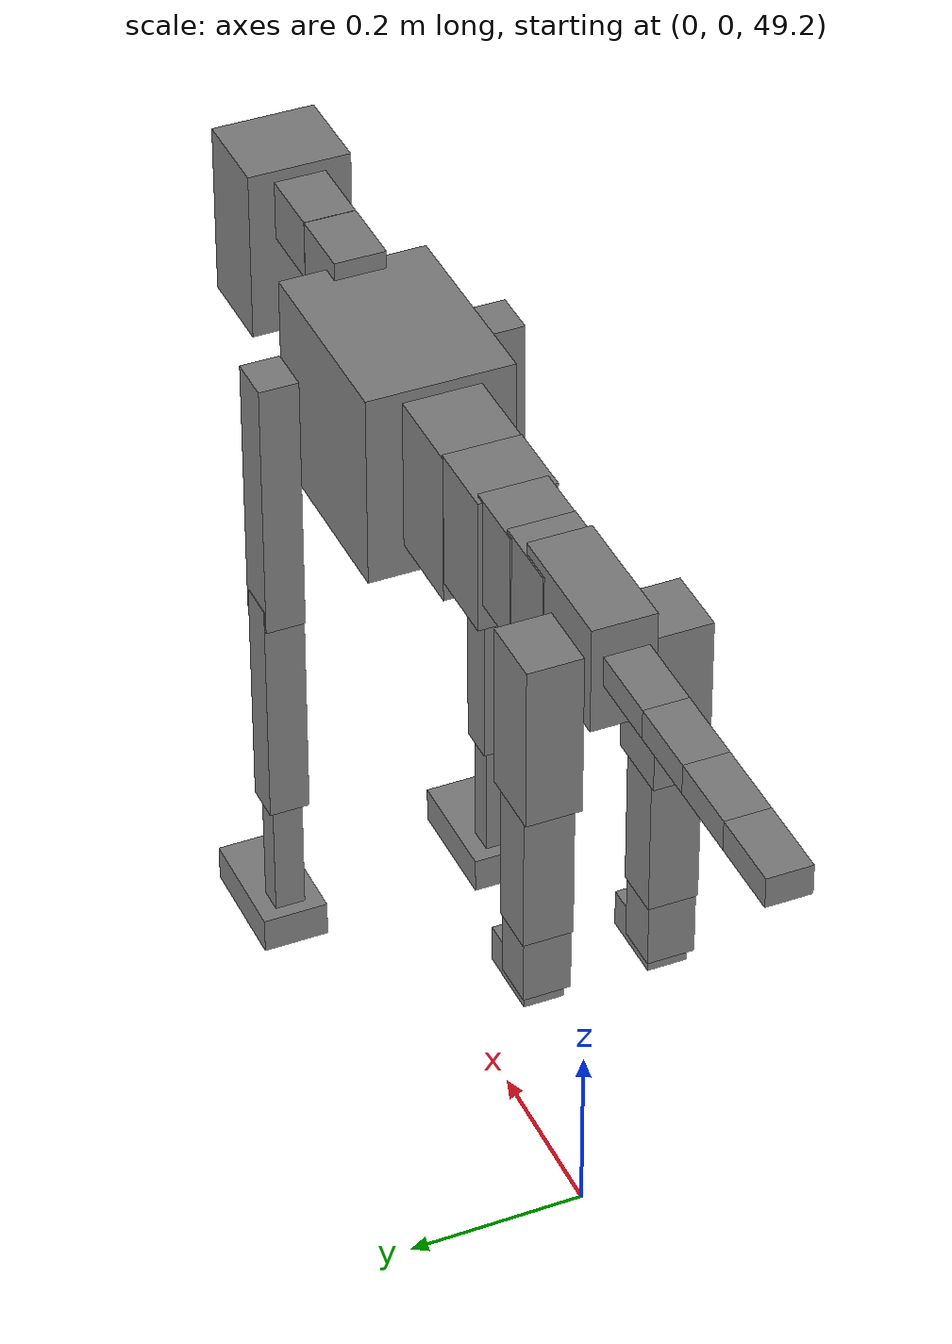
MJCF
<mujoco model="dog">

    <default>
        <joint armature="0.02" stiffness="1" damping="0.2" limited="true"/>
        <geom condim="3" friction="1 0.05 0.05" margin="0.01"/>
        <motor ctrllimited="true" ctrlrange="-1.0 1.0" forcelimited="true" gear="50"/>
    </default>

    <compiler inertiafromgeom="true" angle="radian"/>

    <option timestep="0.016" iterations="50" tolerance="1e-10" solver="Newton" jacobian="dense" cone="pyramidal"/>

    <size nconmax="20000" njmax="60000" nstack="5000000"/>
    <visual>
        <map force="0.1" zfar="30"/>
        <rgba haze="0.15 0.25 0.35 1"/>
        <quality shadowsize="2048"/>
        <global offwidth="800" offheight="800"/>
    </visual>

    <asset>
        <texture type="skybox" builtin="gradient" rgb1="0.3 0.5 0.7" rgb2="0 0 0" width="512" height="512"/>
        <texture name="texplane" type="2d" builtin="checker" rgb1=".2 .3 .4" rgb2=".1 0.15 0.2" width="512" height="512"
                 mark="cross" markrgb=".8 .8 .8"/>
        <texture name="texgeom" type="cube" builtin="flat" mark="cross" width="127" height="1278" rgb1="0.8 0.6 0.4"
                 rgb2="0.8 0.6 0.4" markrgb="1 1 1" random="0.01"/>

        <material name="matplane" reflectance="0.3" texture="texplane" texrepeat="1 1" texuniform="true"/>
        <material name="matgeom" texture="texgeom" texuniform="true" rgba="0.8 0.6 .4 1"/>
    </asset>

    <worldbody>
        <geom name="floor" pos="0 0 0" size="0 0 .25" type="plane" material="matplane" condim="3"/>

        <light directional="false" diffuse=".2 .2 .2" specular="0 0 0" pos="0 0 5" dir="0 0 -1" castshadow="false"/>
        <light mode="targetbodycom" target="torso" directional="false" diffuse=".8 .8 .8" specular="0.3 0.3 0.3"
               pos="0 0 4.0" dir="0 0 -1"/>

        <body name="root" pos="0 0 50">
            <freejoint name="root_1"/>
            <geom type="box" pos="0 0 -0.02" size="0.0774  0.0358  0.063" density="2030"/>

            <body name="spine1" pos="0.054 0 0">
                <joint name="spine1_y" axis="0 1 0" range="0 0.7" limited="true"/>
                <geom type="box" pos="0.02375 0 -0.03" size="0.04375  0.0375  0.05985" density="2030"/>

                <body name="spine2" pos="0.0612 0 0">
                    <joint name="spine2_y" axis="0 1 0" range="-0.15 0.15" limited="true"/>
                    <geom type="box" pos="0.03555  0  -0.04" size="0.04055  0.039  0.06615" density="2030"/>

                    <body name="spine3" pos="0.0730 0 0">
                        <joint name="spine3_y" axis="0 1 0" range="-0.15 0.15" limited="true"/>
                        <geom type="box" pos="0.03555  0  -0.057" size="0.04555  0.0445  0.081" density="2030"/>

                        <body name="spine4" pos="0.0780 0 0">
                            <joint name="spine4_y" axis="0 1 0" range="-0.15 0.15" limited="true"/>
                            <geom type="box" pos="0.05265  0  -0.07" size="0.05265  0.045  0.09135" density="2030"/>

                            <body name="torso" pos="0.1082 0 0">
                                <joint name="torso_y" axis="0 1 0" range="-0.15 0.15" limited="true"/>
                                <geom type="box" pos="0.11925  0  -0.085" size="0.11925  0.085  0.11745"
                                      density="2030"/>

                                <body name="neck1" pos="0.2160  0   0.0180">
                                    <joint name="neck1_y" axis="0 1 0" range="-1.2  -1" limited="true"/>
                                    <geom type="box" pos="0.0423  0  0" size="0.0423  0.03  0.036" density="2325"/>

                                    <body name="neck2" pos="0.0853  0  0">
                                        <joint name="neck2_y" axis="0 1 0" range="0.1  0" limited="true"/>
                                        <geom type="box" pos="0.0423  0  0" size="0.0423  0.03  0.036" density="2325"/>

                                        <body name="head" pos="0.0853  0  0">
                                            <joint name="head_y" axis="0 1 0" range="-0.3  -0.2" limited="true"/>
                                            <geom type="box" pos="0.0531  0  -0.055" size="0.0531  0.06  0.1044"
                                                  density="4030"/>

                                        </body>
                                    </body>
                                </body>

                                <body name="front_shoulder" pos="0.156  0   -0.0480">
                                    <joint name="front_shoulder_y" axis="0 1 0" range="-1 1.5" limited="true"/>
                                    <geom type="box" pos="0 0.13 -0.1336" size="0.0268  0.0229  0.1602" density="1158"/>
                                    <geom type="box" pos="0 -0.13 -0.1336" size="0.0268  0.0229  0.1602"
                                          density="1158"/>

                                    <body name="front_elbow" pos="0  0  -0.2671">
                                        <joint name="front_elbow_y" axis="0 1 0" range="-2 0" limited="true"/>
                                        <geom type="box" pos="0 0.13 -0.1438" size="0.0228  0.0234  0.1438"
                                              density="1081"/>
                                        <geom type="box" pos="0 -0.13 -0.1438" size="0.0228  0.0234  0.1438"
                                              density="1081"/>

                                        <body name="front_wrist" pos="0  0  -0.2875">
                                            <joint name="front_wrist_y" axis="0 1 0" range="-0.2 0" limited="true"/>
                                            <geom type="box" pos="0 0.13 -0.0800" size="0.0158  0.0176  0.0932"
                                                  density="1664"/>
                                            <geom type="box" pos="0 -0.13 -0.0800" size="0.0158  0.0176  0.0932"
                                                  density="1664"/>

                                            <body name="front_finger_end" pos="0  0  -0.1600">
                                                <joint name="front_finger_y" axis="0 1 0" range="-0.4 1"
                                                       limited="true"/>
                                                <geom type="box" pos="0.0382  0.13  -0.0066"
                                                      size="0.0701  0.0382  0.0216" density="1515"/>
                                                <geom type="box" pos="0.0382  -0.13  -0.0066"
                                                      size="0.0701  0.0382  0.0216" density="1515"/>

                                            </body>

                                        </body>
                                    </body>
                                </body>

                            </body>
                        </body>
                    </body>
                </body>
            </body>

            <body name="back_hip" pos="-0.03 0 -0.018">
                <joint name="back_hip_y" axis="0 1 0" range="-1.5 0.3" limited="true"/>
                <geom type="box" pos="0 0.07 -0.0743" size="0.0395  0.0310  0.0971" density="1154"/>
                <geom type="box" pos="0 -0.07 -0.0743" size="0.0395  0.0310  0.0971" density="1154"/>

                <body name="back_knee" pos="0  0  -0.1485">
                    <joint name="back_knee_y" axis="0 1 0" range="0 2.8" limited="true"/>
                    <geom type="box" pos="0 0.07 -0.0878" size="0.0283  0.0279  0.1033" density="1227"/>
                    <geom type="box" pos="0 -0.07 -0.0878" size="0.0283  0.0279  0.1033" density="1227"/>

                    <body name="back_ankle" pos="0  0  -0.1755">
                        <joint name="back_ankle_y" axis="0 1 0" range="-2.2 0" limited="true"/>
                        <geom type="box" pos="0 0.07 -0.0400" size="0.0265  0.0265  0.0512" density="1284"/>
                        <geom type="box" pos="0 -0.07 -0.0400" size="0.0265  0.0265  0.0512" density="1284"/>

                        <body name="back_toe_end" pos="0  0  -0.0800">
                            <joint name="back_toe_y" axis="0 1 0" range="-0.4 1" limited="true"/>
                            <geom type="box" pos="0.0221  0.07  -0.0068" size="0.0406  0.0221  0.0218" density="1515"/>
                            <geom type="box" pos="0.0221  -0.07  -0.0068" size="0.0406  0.0221  0.0218" density="1515"/>

                        </body>
                    </body>
                </body>
            </body>

            <body name="tail1" pos="-0.074 0 -0.006">
                <joint name="tail1_y" axis="0 1 0" range="-0.2 0.2" limited="true"/>
                <geom type="box" pos="-0.0536  0  0" size="0.045  0.025  0.0175" density="1587"/>

                <body name="tail2" pos="-0.09 0 0">
                    <joint name="tail2_y" axis="0 1 0" range="-0.2 0.2" limited="true"/>
                    <geom type="box" pos="-0.0536  0  0" size="0.045  0.025  0.0175" density="1587"/>

                    <body name="tail3" pos="-0.09 0 0">
                        <joint name="tail3_y" axis="0 1 0" range="-0.2 0.2" limited="true"/>
                        <geom type="box" pos="-0.0536  0  0" size="0.045  0.025  0.0175" density="1587"/>

                        <body name="tail4" pos="-0.09 0 0">
                            <joint name="tail4_y" axis="0 1 0" range="-0.2 0.2" limited="true"/>
                            <geom type="box" pos="-0.0536  0  0" size="0.045  0.025  0.0175" density="1587"/>

                        </body>
                    </body>
                </body>
            </body>
        </body>
    </worldbody>

    <actuator>
        <motor joint="spine1_y" forcerange="-150 150     "/>
        <motor joint="spine2_y" forcerange="-150 150     "/>
        <motor joint="spine3_y" forcerange="-150 150     "/>
        <motor joint="spine4_y" forcerange="-150 150     "/>
        <motor joint="torso_y" forcerange="-150 150     "/>
        <motor joint="neck1_y" forcerange="-100 100       "/>
        <motor joint="neck2_y" forcerange="-100 100       "/>
        <motor joint="head_y" forcerange="-150 150       "/>
        <motor joint="front_shoulder_y" forcerange="-122.35 130.42"/>
        <motor joint="front_elbow_y" forcerange="-113.04 156.84"/>
        <motor joint="front_wrist_y" forcerange="-80.34 60.19"/>
        <motor joint="front_finger_y" forcerange="-82.04 81.76"/>
        <motor joint="back_hip_y" forcerange="-331.29 282.00"/>
        <motor joint="back_knee_y" forcerange="-390.13 216.27"/>
        <motor joint="back_angle_y" forcerange="-249.28 74.50"/>
        <motor joint="back_toe_y" forcerange="-58.39 38.66"/>
        <motor joint="tail1_y" forcerange="-50 50     "/>
        <motor joint="tail2_y" forcerange="-50 50     "/>
        <motor joint="tail3_y" forcerange="-50 50     "/>
        <motor joint="tail4_y" forcerange="-50 50     "/>
    </actuator>
</mujoco>
